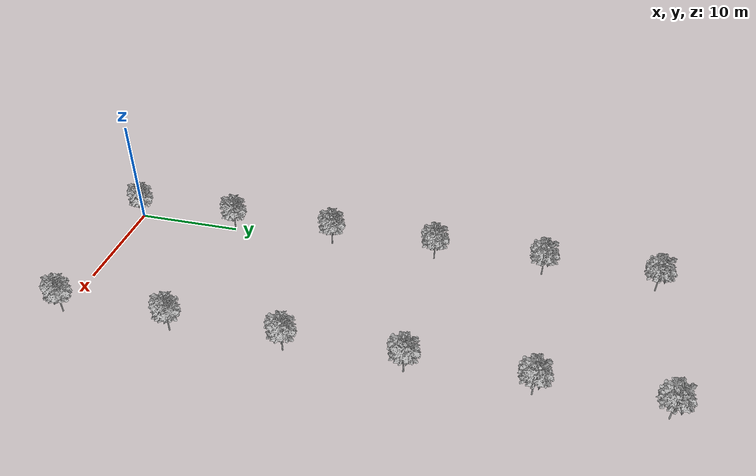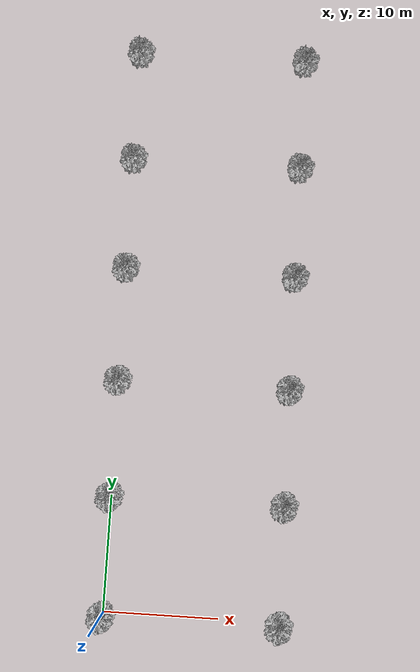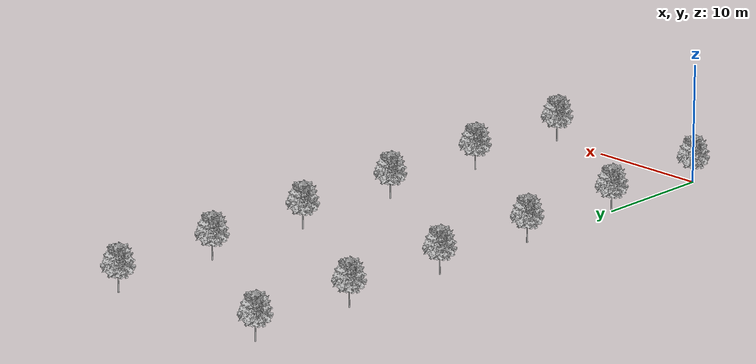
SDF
<sdf version="1.9">
 <world name="apple_orchard_100x75_real_gps_centered">
  <static>true</static>
  <physics type="ode">
   <max_step_size>0.004</max_step_size>
   <real_time_factor>1.0</real_time_factor>
   <real_time_update_rate>250</real_time_update_rate>
  </physics>
  <gravity>0 0 -9.8</gravity>
  <magnetic_field>6e-06 2.3e-05 -4.2e-05</magnetic_field>
  <atmosphere type="adiabatic"/>
  <scene>
   <grid>false</grid>
   <ambient>0.4 0.4 0.4 1</ambient>
   <background>0.7 0.7 0.7 1</background>
   <shadows>true</shadows>
  </scene>
  <include><uri>model://appletree</uri><name>AppleTree_0</name></include>
  <include><uri>model://appletree</uri><name>AppleTree_1</name><pose>0 10 0 0 0 0</pose></include>
  <include><uri>model://appletree</uri><name>AppleTree_2</name><pose>0 20 0 0 0 0</pose></include>
  <include><uri>model://appletree</uri><name>AppleTree_3</name><pose>0 30 0 0 0 0</pose></include>
  <include><uri>model://appletree</uri><name>AppleTree_4</name><pose>0 40 0 0 0 0</pose></include>
  <include><uri>model://appletree</uri><name>AppleTree_5</name><pose>0 50 0 0 0 0</pose></include>
  <include><uri>model://appletree</uri><name>AppleTree_6</name><pose>15 0 0 0 0 0</pose></include>
  <include><uri>model://appletree</uri><name>AppleTree_7</name><pose>15 10 0 0 0 0</pose></include>
  <include><uri>model://appletree</uri><name>AppleTree_8</name><pose>15 20 0 0 0 0</pose></include>
  <include><uri>model://appletree</uri><name>AppleTree_9</name><pose>15 30 0 0 0 0</pose></include>
  <include><uri>model://appletree</uri><name>AppleTree_10</name><pose>15 40 0 0 0 0</pose></include>
  <include><uri>model://appletree</uri><name>AppleTree_11</name><pose>15 50 0 0 0 0</pose></include>
  <light name="sunUTC" type="directional">
   <pose>0 0 500 0 -0 0</pose>
   <intensity>1</intensity>
   <direction>0.001 0.625 -0.78</direction>
   <diffuse>0.904 0.904 0.904 1</diffuse>
   <specular>0.271 0.271 0.271 1</specular>
   <attenuation><range>2000</range><linear>0</linear><constant>1</constant><quadratic>0</quadratic></attenuation>
   <spot><inner_angle>0</inner_angle><outer_angle>0</outer_angle><falloff>0</falloff></spot>
  </light>
  <spherical_coordinates>
   <surface_model>EARTH_WGS84</surface_model>
   <world_frame_orientation>ENU</world_frame_orientation>
   <latitude_deg>59.36818431847906</latitude_deg>
   <longitude_deg>10.444830999411774</longitude_deg>
   <elevation>0</elevation>
  </spherical_coordinates>
 </world>
</sdf>

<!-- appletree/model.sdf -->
<sdf version="1.9">
  <model name="appletree">
    <static>true</static>
    <link name="link">

      <!-- Use the exact same mesh for collisions! -->
      <collision name="collision">
        <!-- Exact same pose as the visual -->
        <pose>0 0 0 0 0 0</pose>
        <geometry>
          <mesh>
            <uri>model://appletree/meshes/appletree.obj</uri>
            <scale>8 8 8</scale>
          </mesh>
        </geometry>
      </collision>

      <!-- The visual mesh -->
      <visual name="visual">
        <pose>0 0 0 0 0 0</pose>
        <geometry>
          <mesh>
            <uri>model://appletree/meshes/appletree.obj</uri>
            <scale>8 8 8</scale>
          </mesh>
        </geometry>
      </visual>

    </link>
  </model>
</sdf>
